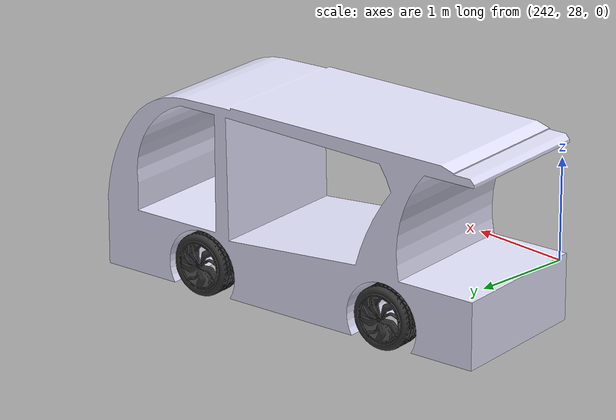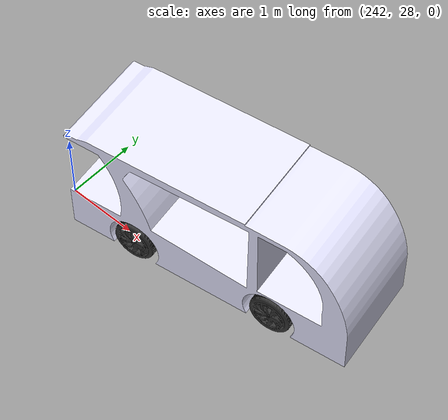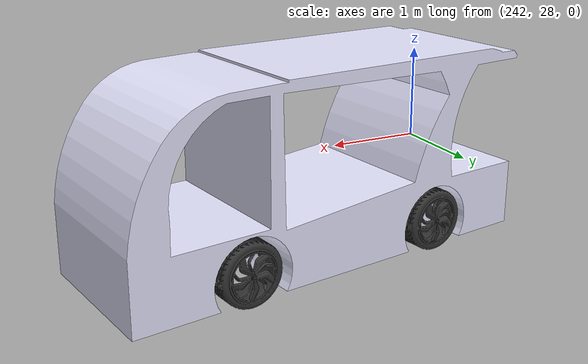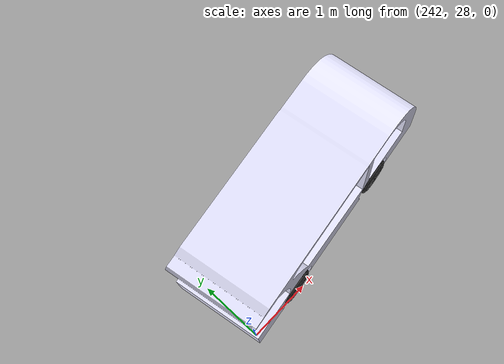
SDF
<sdf version="1.9">
 <world name="parking_lot">
  <physics name="4ms" type="dart">
   <max_step_size>0.004</max_step_size>
   <real_time_factor>1.0</real_time_factor>
  </physics>
  <plugin filename="gz-sim-physics-system" name="gz::sim::systems::Physics"/>
  <plugin filename="gz-sim-user-commands-system" name="gz::sim::systems::UserCommands"/>
  <plugin filename="gz-sim-sensors-system" name="gz::sim::systems::Sensors">
   <render_engine>ogre2</render_engine>
   <disable_on_drained_battery>true</disable_on_drained_battery>
  </plugin>
  <plugin filename="gz-sim-imu-system" name="gz::sim::systems::Imu"/>
  <plugin filename="gz-sim-magnetometer-system" name="gz::sim::systems::Magnetometer"/>
  <plugin filename="gz-sim-forcetorque-system" name="gz::sim::systems::ForceTorque"/>
  <plugin filename="gz-sim-particle-emitter2-system" name="gz::sim::systems::ParticleEmitter2"/>
  <plugin filename="gz-sim-scene-broadcaster-system" name="gz::sim::systems::SceneBroadcaster"/>
  <plugin filename="gz-sim-contact-system" name="gz::sim::systems::Contact"/>
  <light type="directional" name="sun">
   <pose>0 0 10 0 0 0</pose>
   <diffuse>0.8 0.8 0.8 1</diffuse>
   <specular>1 1 1 1</specular>
   <attenuation>
    <range>1000</range>
    <constant>0.9</constant>
    <linear>0.01</linear>
    <quadratic>0.001</quadratic>
   </attenuation>
   <direction>-0.5 0.1 -0.9</direction>
  </light>
  <include><name>vtec_sdv</name><pose>244 29 -0.325 0 -0 0.15</pose><uri>vtec_sdv</uri></include>
 </world>
</sdf>

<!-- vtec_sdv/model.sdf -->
<sdf version="1.6">

  <model name='vtec_delorean'>
    <pose>0 2 0.325 0 -0 0</pose>

    <link name='chassis'>
      <pose>0 0 0.6 0 0 -1.5708</pose>
      <inertial>
        <mass>1.14395</mass>
        <inertia>
          <ixx>0.126164</ixx>
          <ixy>0</ixy>
          <ixz>0</ixz>
          <iyy>0.416519</iyy>
          <iyz>0</iyz>
          <izz>0.481014</izz>
        </inertia>
      </inertial>
      <visual name='visual'>

        <geometry>
          <mesh>
            <uri>file://vtec_sdv/meshes/sdv_chassis.dae</uri>
            <scale>1 1 1</scale>
          </mesh>
        </geometry>

        <material>
          <ambient>0.9 0.9 1.0 1</ambient>
          <diffuse>0.9 0.9 1.0 1</diffuse>
          <specular>0.9 0.9 1.0 1</specular>
        </material>
      </visual>
      <collision name='collision_car_shaped'>
        <geometry>
          <mesh>
            <uri>file://vtec_sdv/meshes/sdv_chassis.dae</uri>
            <scale>1 1 1</scale>
          </mesh>
        </geometry>
      </collision>

      <sensor name='gpu_lidar' type='gpu_lidar'>
        <pose>0 2 1 0 0 0</pose>
        <topic>lidar</topic>
        <update_rate>10</update_rate>
        <lidar>
          <scan>
            <horizontal>
              <samples>640</samples>
              <resolution>1</resolution>
              <min_angle>-3.14</min_angle>
              <max_angle>3.14</max_angle>
            </horizontal>
            <vertical>
              <samples>16</samples>
              <resolution>1</resolution>
              <min_angle>-1</min_angle>
              <max_angle>1</max_angle>
            </vertical>
          </scan>
          <range>
            <min>0.2</min>
            <max>20.0</max>
            <resolution>0.01</resolution>
          </range>
        </lidar>
        <alwaysOn>1</alwaysOn>
        <visualize>true</visualize>
        <plugin
          filename="RosGzPointCloud"
          name="ros_gz_point_cloud::PointCloud">
          <namespace>custom_params</namespace>
          <topic>pc2</topic>
          <frame_id>custom_params/link</frame_id>
        </plugin>
      </sensor>

      <sensor name="rgbd_camera" type="rgbd_camera">
        <pose>0 2.3 1.6 0 0.2 1.57078</pose>
        <camera>
          <horizontal_fov>1.047</horizontal_fov>
          <image>
            <width>1280</width>
            <height>720</height>
          </image>
          <clip>
            <near>0.1</near>
            <far>100</far>
          </clip>
        </camera>
        <always_on>1</always_on>
        <update_rate>30</update_rate>
        <visualize>true</visualize>
        <topic>zed_rgbd</topic>
        <plugin
          filename="RosGzPointCloud"
          name="ros_gz_point_cloud::PointCloud">
          <namespace>custom_params</namespace>
          <topic>pc2</topic>
          <frame_id>map</frame_id>
        </plugin>
      </sensor>
    </link>

    <link name='front_left_wheel'>
      <pose>0.954283 0.625029 -0.025 -1.5707 0 0</pose>
      <inertial>
        <mass>2</mass>
        <inertia>
          <ixx>0.145833</ixx>
          <ixy>0</ixy>
          <ixz>0</ixz>
          <iyy>0.145833</iyy>
          <iyz>0</iyz>
          <izz>0.125</izz>
        </inertia>
      </inertial>
      <visual name='visual'>

        <pose>0 0 0.1 0 1.5708 0</pose>
        <geometry>
          <mesh>
            <uri>file://vtec_sdv/meshes/sdv_wheel.dae</uri>
            <scale>0.1 0.1 0.1</scale>
          </mesh>
        </geometry>

        <material>
          <ambient>0.2 0.2 0.2 1</ambient>
          <diffuse>0.2 0.2 0.2 1</diffuse>
          <specular>0.2 0.2 0.2 1</specular>
        </material>
      </visual>
      <collision name='collision'>
        <geometry>
          <cylinder>
            <length>0.15</length>
            <radius>0.3</radius>
          </cylinder>
        </geometry>
        <surface>
          <friction>
            <ode>
              <mu>0.5</mu>
              <mu2>1.0</mu2>
              <fdir1>0 0 1</fdir1>
            </ode>
            <bullet>
              <friction>0.5</friction>
              <friction2>1</friction2>
              <rolling_friction>0.1</rolling_friction>
            </bullet>
          </friction>
        </surface>
      </collision>
    </link>

    <link name='rear_left_wheel'>
      <pose>-1.157138 0.625029 -0.025 -1.5707 0 0</pose>
      <inertial>
        <mass>2</mass>
        <inertia>
          <ixx>0.145833</ixx>
          <ixy>0</ixy>
          <ixz>0</ixz>
          <iyy>0.145833</iyy>
          <iyz>0</iyz>
          <izz>0.125</izz>
        </inertia>
      </inertial>
      <visual name='visual'>
        <pose>0 0 0.1 0 1.5708 0</pose>
        <geometry>
          <mesh>
            <uri>file://vtec_sdv/meshes/sdv_wheel.dae</uri>
            <scale>0.1 0.1 0.1</scale>
          </mesh>
        </geometry>
        <material>
          <ambient>0.2 0.2 0.2 1</ambient>
          <diffuse>0.2 0.2 0.2 1</diffuse>
          <specular>0.2 0.2 0.2 1</specular>
        </material>
      </visual>
      <collision name='collision'>
        <geometry>
          <cylinder>
            <length>0.15</length>
            <radius>0.3</radius>
          </cylinder>
        </geometry>
        <surface>
          <friction>
            <ode>
              <mu>0.5</mu>
              <mu2>1.0</mu2>
              <fdir1>0 0 1</fdir1>
            </ode>
            <bullet>
              <friction>0.5</friction>
              <friction2>1</friction2>
              <rolling_friction>0.5</rolling_friction>
            </bullet>
          </friction>
        </surface>
      </collision>
    </link>

    <link name='front_right_wheel'>
      <pose>0.954282 -0.625029 -0.025 -1.5707 0 0</pose>
      <inertial>
        <mass>2</mass>
        <inertia>
          <ixx>0.145833</ixx>
          <ixy>0</ixy>
          <ixz>0</ixz>
          <iyy>0.145833</iyy>
          <iyz>0</iyz>
          <izz>0.125</izz>
        </inertia>
      </inertial>
      <visual name='visual'>
        <pose>0 0 -0.1 0 -1.5708 0</pose>
        <geometry>
          <mesh>
            <uri>file://vtec_sdv/meshes/sdv_wheel.dae</uri>
            <scale>0.1 0.1 0.1</scale>
          </mesh>
        </geometry>
        <material>
          <ambient>0.2 0.2 0.2 1</ambient>
          <diffuse>0.2 0.2 0.2 1</diffuse>
          <specular>0.2 0.2 0.2 1</specular>
        </material>
      </visual>
      <collision name='collision'>
        <geometry>
          <cylinder>
            <length>0.15</length>
            <radius>0.3</radius>
          </cylinder>
        </geometry>
        <surface>
          <friction>
            <ode>
              <mu>0.5</mu>
              <mu2>1.0</mu2>
              <fdir1>0 0 1</fdir1>
            </ode>
            <bullet>
              <friction>0.5</friction>
              <friction2>1</friction2>
              <rolling_friction>0.1</rolling_friction>
            </bullet>
          </friction>
        </surface>
      </collision>
    </link>

    <link name='rear_right_wheel'>
      <pose>-1.157138 -0.625029 -0.025 -1.5707 0 0</pose>
      <inertial>
        <mass>2</mass>
        <inertia>
          <ixx>0.145833</ixx>
          <ixy>0</ixy>
          <ixz>0</ixz>
          <iyy>0.145833</iyy>
          <iyz>0</iyz>
          <izz>0.125</izz>
        </inertia>
      </inertial>
      <visual name='visual'>
        <pose>0 0 -0.1 0 -1.5708 0</pose>
        <geometry>
          <mesh>
            <uri>file://vtec_sdv/meshes/sdv_wheel.dae</uri>
            <scale>0.1 0.1 0.1</scale>
          </mesh>
        </geometry>
        <material>
          <ambient>0.2 0.2 0.2 1</ambient>
          <diffuse>0.2 0.2 0.2 1</diffuse>
          <specular>0.2 0.2 0.2 1</specular>
        </material>
      </visual>
      <collision name='collision'>
        <geometry>
          <cylinder>
            <length>0.15</length>
            <radius>0.3</radius>
          </cylinder>
        </geometry>
        <surface>
          <friction>
            <ode>
              <mu>0.5</mu>
              <mu2>1.0</mu2>
              <fdir1>0 0 1</fdir1>
            </ode>
            <bullet>
              <friction>0.5</friction>
              <friction2>1</friction2>
              <rolling_friction>0.5</rolling_friction>
            </bullet>
          </friction>
        </surface>
      </collision>
    </link>

    <link name="front_left_wheel_steering_link">
      <pose>0.954283 0.5 0.02 0 0 0</pose>
      <inertial>
        <mass>0.5</mass>
        <inertia>
          <ixx>0.0153</ixx>
          <iyy>0.025</iyy>
          <izz>0.0153</izz>
        </inertia>
      </inertial>
      <visual name="steering_link_visual">
        <pose>0 0 0 0 0 0</pose>
        <geometry>
          <cylinder>
            <length>0.1</length>
            <radius>0.03</radius>
          </cylinder>
        </geometry>
        <material>
          <ambient>1 1 1</ambient>
          <diffuse>1 1 1</diffuse>
        </material>
      </visual>
    </link>

    <link name="front_right_wheel_steering_link">
      <pose>0.954283 -0.5 0.02 0 0 0</pose>
      <inertial>
        <mass>0.5</mass>
        <inertia>
          <ixx>0.0153</ixx>
          <iyy>0.025</iyy>
          <izz>0.0153</izz>
        </inertia>
      </inertial>
      <visual name="steering_link_visual">
        <pose>0 0 0 0 0 0</pose>
        <geometry>
          <cylinder>
            <length>0.1</length>
            <radius>0.03</radius>
          </cylinder>
        </geometry>
        <material>
          <ambient>1 1 1</ambient>
          <diffuse>1 1 1</diffuse>
        </material>
      </visual>
    </link>

    <joint name="front_left_wheel_steering_joint" type="revolute">
      <child>front_left_wheel_steering_link</child>
      <parent>chassis</parent>
      <axis>
        <xyz>0 0 1</xyz>
        <limit>
          <lower>-0.6</lower>
          <upper>+0.6</upper>
          <velocity>1.0</velocity>
          <effort>25</effort>
        </limit>
        <use_parent_model_frame>1</use_parent_model_frame>
      </axis>
    </joint>

    <joint name="front_right_wheel_steering_joint" type="revolute">
      <parent>chassis</parent>
      <child>front_right_wheel_steering_link</child>
      <axis>
        <xyz>0 0 1</xyz>
        <limit>
          <lower>-0.6</lower>
          <upper>+0.6</upper>
          <velocity>1.0</velocity>
          <effort>25</effort>
        </limit>
      </axis>
    </joint>

    <joint name='front_left_wheel_joint' type='revolute'>
      <parent>front_left_wheel_steering_link</parent>
      <child>front_left_wheel</child>
      <axis>
        <xyz>0 0 1</xyz>
        <limit>
          <lower>-1.79769e+308</lower>
          <upper>1.79769e+308</upper>
        </limit>
      </axis>
    </joint>

    <joint name='front_right_wheel_joint' type='revolute'>
      <parent>front_right_wheel_steering_link</parent>
      <child>front_right_wheel</child>
      <axis>
        <xyz>0 0 1</xyz>
        <limit>
          <lower>-1.79769e+308</lower>
          <upper>1.79769e+308</upper>
        </limit>
      </axis>
    </joint>

    <joint name='rear_left_wheel_joint' type='revolute'>
      <parent>chassis</parent>
      <child>rear_left_wheel</child>
      <axis>
        <xyz>0 0 1</xyz>
        <limit>
          <lower>-1.79769e+308</lower>
          <upper>1.79769e+308</upper>
        </limit>
      </axis>
    </joint>

    <joint name='rear_right_wheel_joint' type='revolute'>
      <parent>chassis</parent>
      <child>rear_right_wheel</child>
      <axis>
        <xyz>0 0 1</xyz>
        <limit>
          <lower>-1.79769e+308</lower>
          <upper>1.79769e+308</upper>
        </limit>
      </axis>
    </joint>

    <plugin
      filename="gz-sim-joint-position-controller-system"
      name="gz::sim::systems::JointPositionController">
      <joint_name>front_left_wheel_steering_joint</joint_name>
      <topic>delta_l</topic>
      <p_gain>10</p_gain>
      <i_gain>1</i_gain>
      <d_gain>2</d_gain>
      <i_max>1</i_max>
      <i_min>-1</i_min>
      <cmd_max>30</cmd_max>
      <cmd_min>-30</cmd_min>
    </plugin>
    <plugin
      filename="gz-sim-joint-position-controller-system"
      name="gz::sim::systems::JointPositionController">
      <joint_name>front_right_wheel_steering_joint</joint_name>
      <topic>delta_r</topic>
      <p_gain>10</p_gain>
      <i_gain>1</i_gain>
      <d_gain>2</d_gain>
      <i_max>1</i_max>
      <i_min>-1</i_min>
      <cmd_max>30</cmd_max>
      <cmd_min>-30</cmd_min>
    </plugin>

    <plugin
      filename="gz-sim-joint-controller-system"
      name="gz::sim::systems::JointController">
      <joint_name>front_left_wheel_joint</joint_name>
      <initial_velocity>0.0</initial_velocity>
      <topic>wheel_speed</topic>
    </plugin>
    <plugin
      filename="gz-sim-joint-controller-system"
      name="gz::sim::systems::JointController">
      <joint_name>rear_left_wheel_joint</joint_name>
      <initial_velocity>0.0</initial_velocity>
      <topic>wheel_speed</topic>
    </plugin>
    <plugin
      filename="gz-sim-joint-controller-system"
      name="gz::sim::systems::JointController">
      <joint_name>front_right_wheel_joint</joint_name>
      <initial_velocity>0.0</initial_velocity>
      <topic>wheel_speed</topic>
    </plugin>
    <plugin
      filename="gz-sim-joint-controller-system"
      name="gz::sim::systems::JointController">
      <joint_name>rear_right_wheel_joint</joint_name>
      <initial_velocity>0.0</initial_velocity>
      <topic>wheel_speed</topic>
    </plugin>

    <plugin
      filename="gz-sim-odometry-publisher-system"
      name="gz::sim::systems::OdometryPublisher">
      <odom_frame>world</odom_frame>
      <odom_covariance_topic>/gz_sim/odometry</odom_covariance_topic>
    </plugin>
    </model>

</sdf>
